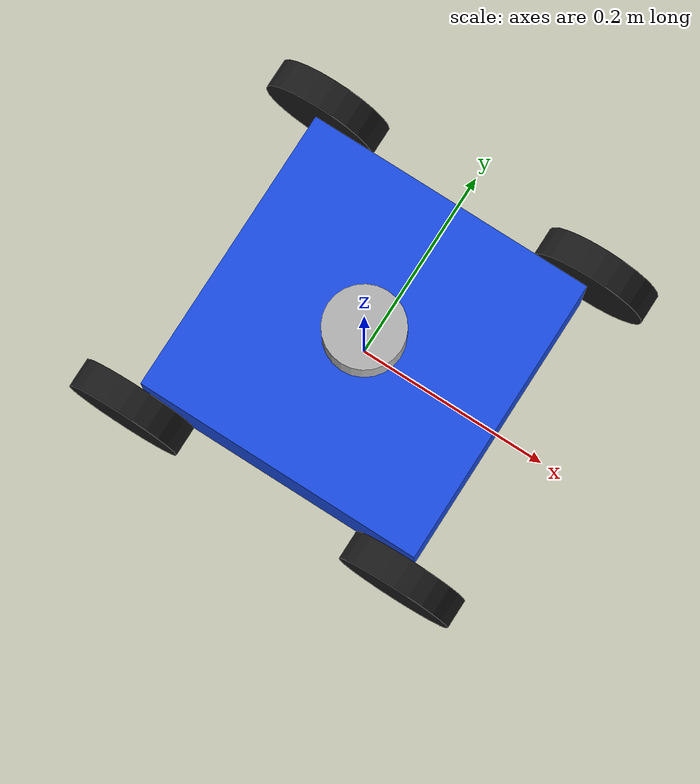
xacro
<?xml version="1.0"?>

<robot xmlns:xacro="http://www.ros.org/wiki/xacro"
       name="lidar_demo">

  <xacro:include filename="$(find lidar_demo)/description/materials.xacro"/>

  <xacro:include filename="$(find lidar_demo)/description/robot_core.xacro"/>

  <xacro:include filename="$(find lidar_demo)/description/wheels.xacro"/>

  <xacro:include filename="$(find lidar_demo)/description/lidar.xacro"/>

  <xacro:include filename="$(find lidar_demo)/description/ros2_control.xacro"/>
  <xacro:include filename="$(find lidar_demo)/description/gazebo.xacro"/>
</robot>

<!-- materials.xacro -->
<robot xmlns:xacro="http://www.ros.org/wiki/xacro">

  <material name="blue">
    <color rgba="0.1 0.3 0.9 1"/>
  </material>

  <material name="black">
    <color rgba="0.1 0.1 0.1 1"/>
  </material>

  <material name="grey">
    <color rgba="0.7 0.7 0.7 1"/>
  </material>

</robot>

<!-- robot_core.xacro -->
<robot xmlns:xacro="http://www.ros.org/wiki/xacro">

  <link name="base_link">

    <visual>
      <origin xyz="0 0 0.05"/>
      <geometry>
        <box size="0.30 0.30 0.10"/>
      </geometry>
      <material name="blue"/>
    </visual>

    <collision>
      <origin xyz="0 0 0.05"/>
      <geometry>
        <box size="0.30 0.30 0.10"/>
      </geometry>
    </collision>

    <inertial>
      <origin xyz="0 0 0.05"/>
      <mass value="5"/>

      <inertia
        ixx="0.05"
        iyy="0.05"
        izz="0.05"
        ixy="0"
        ixz="0"
        iyz="0"/>
    </inertial>

  </link>

</robot>

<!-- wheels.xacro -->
<robot xmlns:xacro="http://www.ros.org/wiki/xacro">

  <!-- Wheel dimensions -->
  <xacro:property name="wheel_radius" value="0.06"/>
  <xacro:property name="wheel_width" value="0.03"/>

  <!-- Wheel macro -->
  <xacro:macro name="wheel" params="name x y">

    <link name="${name}_wheel">

      <visual>
        <origin xyz="0 0 0" rpy="1.5708 0 0"/>
        <geometry>
          <cylinder radius="${wheel_radius}"
                    length="${wheel_width}"/>
        </geometry>
        <material name="black"/>
      </visual>

      <collision>
        <origin xyz="0 0 0" rpy="1.5708 0 0"/>
        <geometry>
          <cylinder radius="${wheel_radius}"
                    length="${wheel_width}"/>
        </geometry>
      </collision>

      <inertial>
        <mass value="0.5"/>

        <origin xyz="0 0 0"/>

        <inertia
            ixx="0.001"
            ixy="0"
            ixz="0"
            iyy="0.001"
            iyz="0"
            izz="0.001"/>
      </inertial>

    </link>

    <joint name="${name}_wheel_joint" type="continuous">

      <parent link="base_link"/>

      <child link="${name}_wheel"/>

      <!-- Wheel center -->
      <origin xyz="${x} ${y} 0.06"/>

      <!-- Wheel rotates about Y -->
      <axis xyz="0 1 0"/>
      <dynamics damping="0.1" friction="0.1"/>

    </joint>

  </xacro:macro>

  <!-- Front -->
  <xacro:wheel name="front_left"  x="0.15"  y="0.17"/>
  <xacro:wheel name="front_right" x="0.15"  y="-0.17"/>

  <!-- Rear -->
  <xacro:wheel name="rear_left"   x="-0.15" y="0.17"/>
  <xacro:wheel name="rear_right"  x="-0.15" y="-0.17"/>

</robot>

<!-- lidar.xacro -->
<robot xmlns:xacro="http://www.ros.org/wiki/xacro">

  <link name="lidar_link">

    <visual>

      <geometry>
        <cylinder radius="0.04" length="0.05"/>
      </geometry>

      <material name="grey"/>

    </visual>

    <collision>

      <geometry>
        <cylinder radius="0.04" length="0.05"/>
      </geometry>

    </collision>

    <inertial>

      <mass value="0.2"/>

      <inertia
        ixx="0.0002"
        iyy="0.0002"
        izz="0.0002"
        ixy="0"
        ixz="0"
        iyz="0"/>

    </inertial>

  </link>

  <joint name="lidar_joint" type="fixed">

    <parent link="base_link"/>

    <child link="lidar_link"/>

    <origin xyz="0 0 0.12"/>

  </joint>

  <!-- Gazebo LiDAR Sensor -->

  <gazebo reference="lidar_link">

    <sensor name="lidar_sensor" type="gpu_lidar">

      <always_on>true</always_on>

      <update_rate>10</update_rate>

      <visualize>true</visualize>

      <topic>/scan</topic>

      <gz_frame_id>lidar_link</gz_frame_id>

      <ray>

        <scan>

          <horizontal>

            <samples>720</samples>

            <resolution>1</resolution>

            <min_angle>-3.14</min_angle>

            <max_angle>3.14</max_angle>

          </horizontal>

        </scan>

        <range>

          <min>0.10</min>

          <max>12.0</max>

          <resolution>0.01</resolution>

        </range>

      </ray>

    </sensor>

  </gazebo>

</robot>
